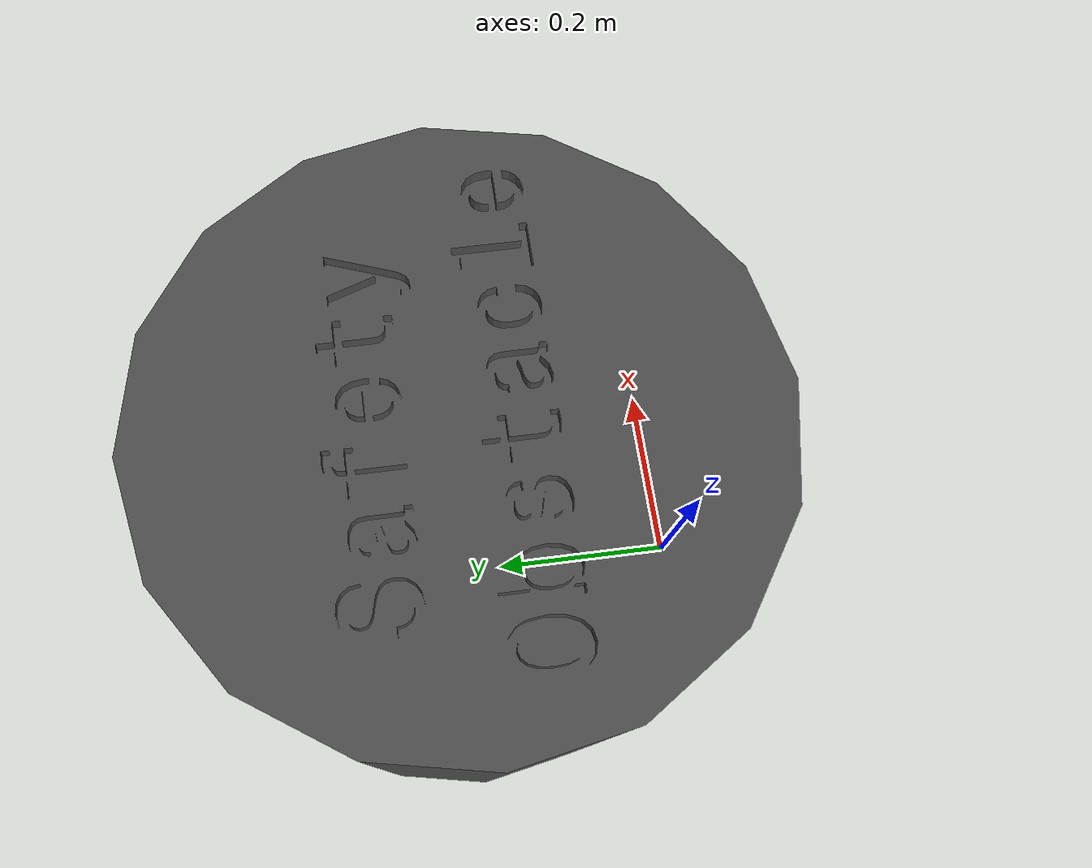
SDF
<?xml version='1.0'?>
<sdf version="1.5">
  <model name="safety_obstacle_cylinder"> <!-- Very important to change-->
    <static>false</static>
    <pose>0 0 0 0 0 0</pose> <!-- Translation: X Y Z and Rotation: Roll Pitch Yaw (In Radian)-->
    <link name="body">

    <inertial>
      <mass>5</mass>
        <inertia>
          <ixx>1</ixx>
          <ixy>0</ixy>
          <ixz>0</ixz>
          <iyy>1</iyy>
          <iyz>0</iyz>
          <izz>1</izz>
      </inertia>
    </inertial>

       <collision name="collision"> <!-- You can use mesh like below -->
        <geometry>
          <mesh>
             <uri>/home/sorox23/robotic_ws/master_thesis_ws/src/property_based_tester/environment/models/safety_obstacle_cylinder/meshes/safety_obstacle_cylinder.stl</uri>
             <scale>0.001 0.001 0.001</scale>
          </mesh>
        </geometry>
      </collision>

      <visual name="visual">
        <geometry>
          <mesh>
             <uri>/home/sorox23/robotic_ws/master_thesis_ws/src/property_based_tester/environment/models/safety_obstacle_cylinder/meshes/safety_obstacle_cylinder.stl</uri>
             <scale>0.001 0.001 0.001</scale>
          </mesh>
        </geometry>

        <material>
          <script>
             <uri>/home/sorox23/robotic_ws/master_thesis_ws/src/property_based_tester/environment/models/safety_obstacle_cylinder/materials/scripts</uri>
             <uri>/home/sorox23/robotic_ws/master_thesis_ws/src/property_based_tester/environment/models/safety_obstacle_cylinder/materials/textures</uri>
             <name>Gazebo/DarkGrey</name>
          </script>
        </material>
      </visual>
    </link>
  </model>
</sdf>
